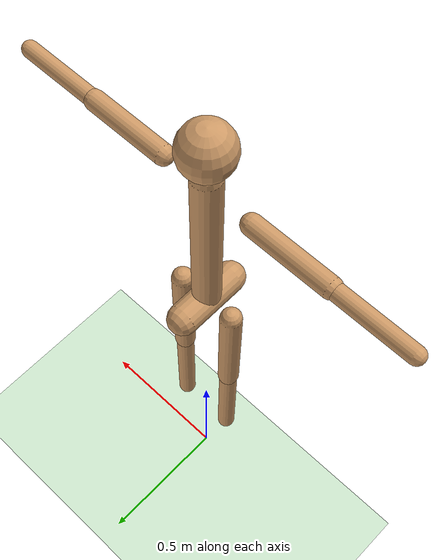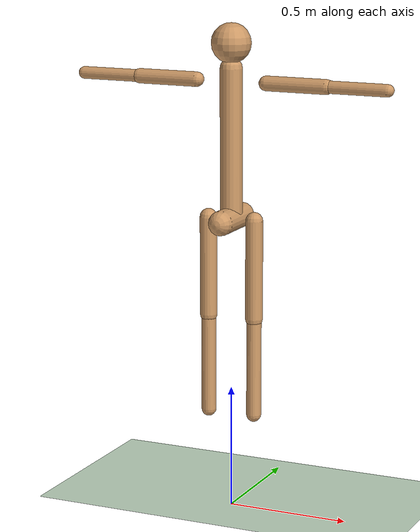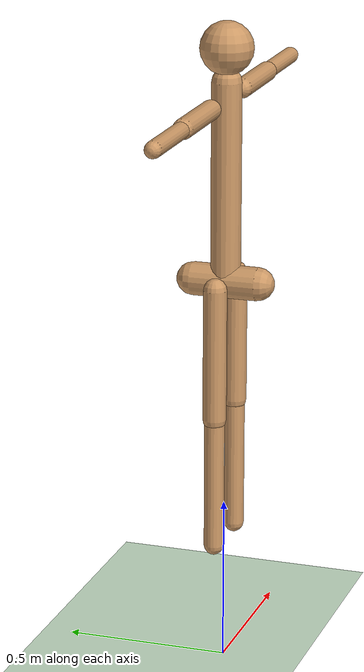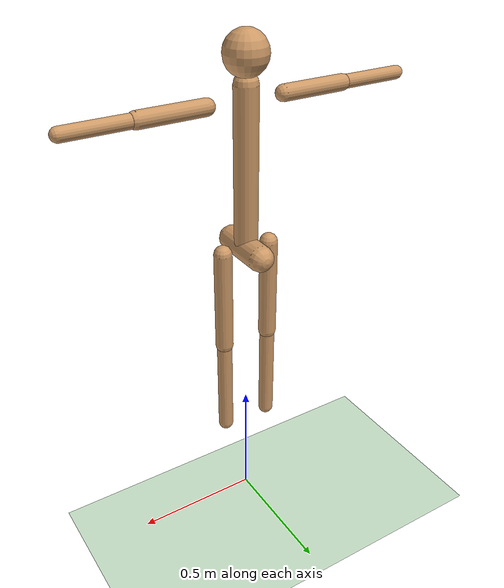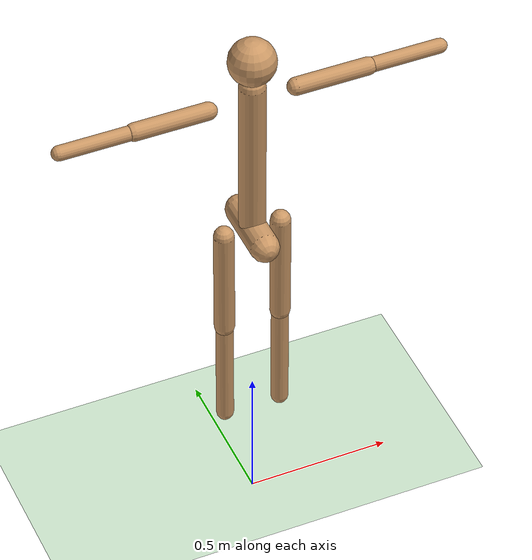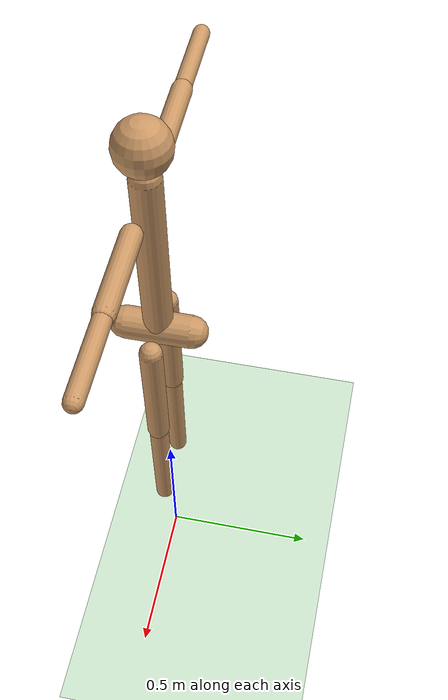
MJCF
<mujoco model="human scene">
  <include file="human.xml"/>

  <statistic center="0.2 0 0.2" extent="1.0"/>

  <visual>
    <headlight diffuse="0.6 0.6 0.6" ambient="0.3 0.3 0.3" specular="0 0 0"/>
    <rgba haze="0.15 0.25 0.35 1"/>
    <global azimuth="-120" elevation="-20"/>
  </visual>

  <asset>
    <texture type="skybox" builtin="gradient" rgb1="0.3 0.5 0.7" rgb2="0 0 0" width="512" height="3072"/>
    <texture type="2d" name="groundplane" builtin="checker" mark="edge" rgb1="0.2 0.3 0.4" rgb2="0.1 0.2 0.3"
      markrgb="0.8 0.8 0.8" width="300" height="300"/>
    <material name="groundplane" texture="groundplane" texuniform="true" texrepeat="5 5" reflectance="0.2"/>
  </asset>

  <worldbody>
    <light pos="0 0 1.5" dir="0 0 -1" directional="true"/>
    <geom name="floor" type="plane" size="0 0 .05" rgba="0.8 0.9 0.8 1" contype="1" conaffinity="1"/>
  </worldbody>
</mujoco>

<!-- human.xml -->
<mujoco model="stick_human">
    <compiler angle="degree" coordinate="local" inertiafromgeom="true"/>

    <option integrator="RK4" timestep="0.01" gravity="0 0 -9.81"/>

    <default>
        <!-- Set contype/conaffinity to 1 so it interacts with your existing scene floor -->
        <joint armature="0.01" damping="0.1" limited="true"/>
        <geom contype="1" conaffinity="1" condim="3" density="1000" friction=".5 .1 .1" rgba="0.8 0.6 0.4 1"/>
    </default>

    <worldbody>
        <!-- Pelvis rotated 90 degrees on Z -->
        <body name="pelvis" pos="0 0 1.2" euler="0 0 90">
            <freejoint name="root"/>
            <geom name="pelvis_geom" type="capsule" fromto="-0.1 0 0 0.1 0 0" size="0.05"/>

            <!-- Torso: Spine lengthened to 0.6 -->
            <body name="torso" pos="0 0 0">
                <geom name="spine" type="capsule" fromto="0 0 0 0 0 0.6" size="0.045"/>

                <!-- Head moved up to match longer torso -->
                <body name="head" pos="0 0 0.7">
                    <geom name="head_geom" type="sphere" size="0.08"/>
                </body>

                <!-- Right Arm: Positioned higher (0.55) to stay on the torso -->
                <body name="right_upper_arm" pos="0 -0.15 0.55">
                    <joint name="right_shoulder" type="ball" range="0 180"/>
                    <geom name="rua_geom" type="capsule" fromto="0 0 0 0 -0.25 0" size="0.03"/>
                    <body name="right_lower_arm" pos="0 -0.25 0">
                        <joint name="right_elbow" type="hinge" pos="0 0 0" axis="0 0 1" range="0 150"/>
                        <geom name="rla_geom" type="capsule" fromto="0 0 0 0 -0.25 0" size="0.025"/>
                    </body>
                </body>

                <!-- Left Arm: Positioned higher (0.55) to stay on the torso -->
                <body name="left_upper_arm" pos="0 0.15 0.55">
                    <joint name="left_shoulder" type="ball" range="0 180"/>
                    <geom name="lua_geom" type="capsule" fromto="0 0 0 0 0.25 0" size="0.03"/>
                    <body name="left_lower_arm" pos="0 0.25 0">
                        <joint name="left_elbow" type="hinge" pos="0 0 0" axis="0 0 1" range="-150 0"/>
                        <geom name="lla_geom" type="capsule" fromto="0 0 0 0 0.25 0" size="0.025"/>
                    </body>
                </body>
            </body>

            <!-- Right Leg -->
            <body name="right_thigh" pos="0 -0.1 0">
                <joint name="right_hip" type="ball" range="0 90"/>
                <geom name="rt_geom" type="capsule" fromto="0 0 0 0 0 -0.4" size="0.035"/>
                <body name="right_shin" pos="0 0 -0.4">
                    <joint name="right_knee" type="hinge" pos="0 0 0" axis="0 1 0" range="0 150"/>
                    <geom name="rs_geom" type="capsule" fromto="0 0 0 0 0 -0.4" size="0.03"/>
                </body>
            </body>

            <!-- Left Leg -->
            <body name="left_thigh" pos="0 0.1 0">
                <joint name="left_hip" type="ball" range="0 90"/>
                <geom name="lt_geom" type="capsule" fromto="0 0 0 0 0 -0.4" size="0.035"/>
                <body name="left_shin" pos="0 0 -0.4">
                    <joint name="left_knee" type="hinge" pos="0 0 0" axis="0 1 0" range="0 150"/>
                    <geom name="ls_geom" type="capsule" fromto="0 0 0 0 0 -0.4" size="0.03"/>
                </body>
            </body>
        </body>
    </worldbody>

    <actuator>
        <motor joint="right_shoulder" ctrlrange="-100 100"/>
        <motor joint="right_elbow" ctrlrange="-50 50"/>
        <motor joint="left_shoulder" ctrlrange="-100 100"/>
        <motor joint="left_elbow" ctrlrange="-50 50"/>
        <motor joint="right_hip" ctrlrange="-100 100"/>
        <motor joint="right_knee" ctrlrange="-70 70"/>
        <motor joint="left_hip" ctrlrange="-100 100"/>
        <motor joint="left_knee" ctrlrange="-70 70"/>
    </actuator>
</mujoco>
